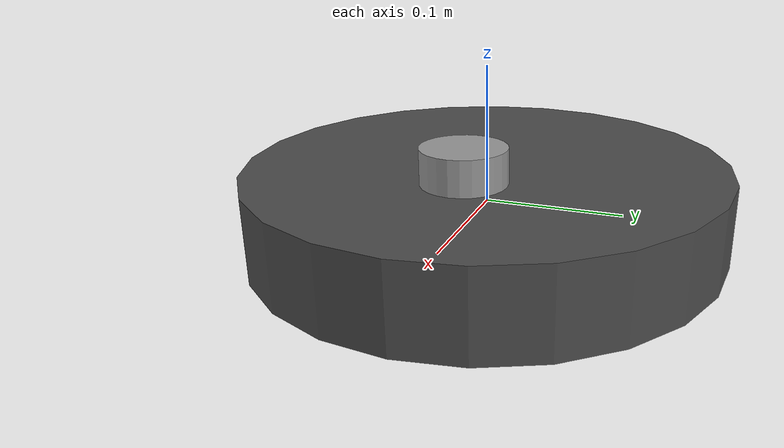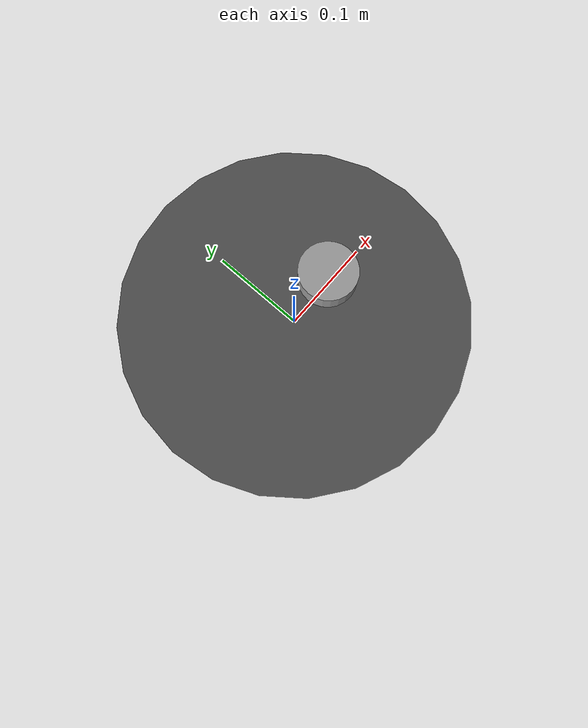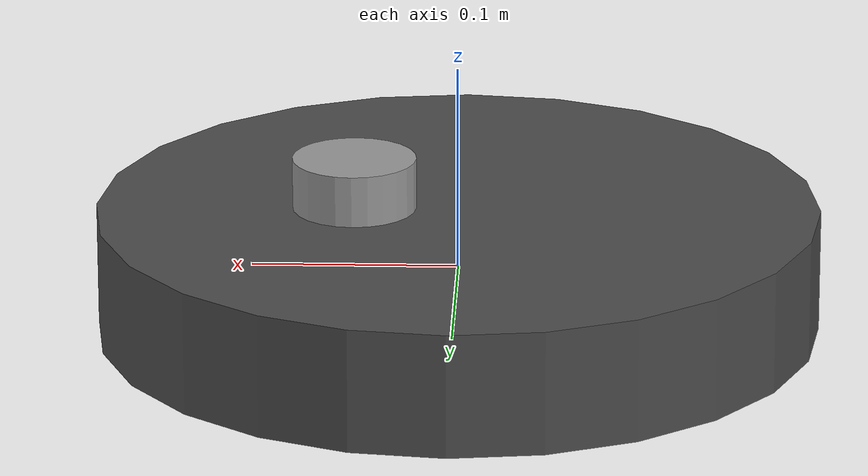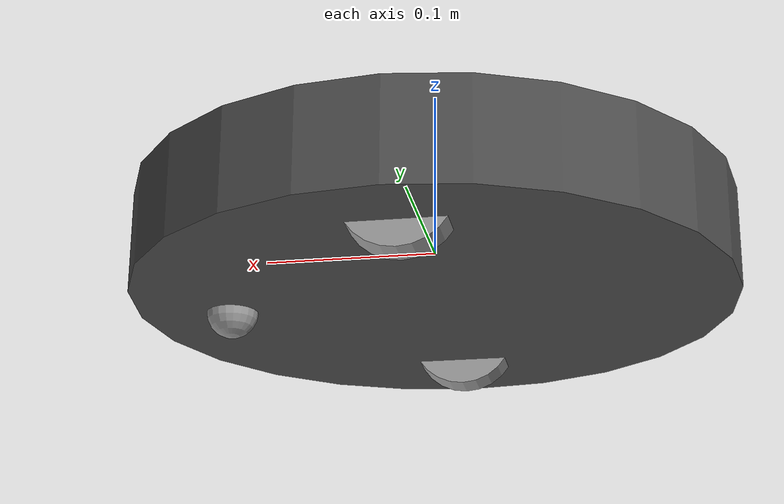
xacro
<?xml version="1.0" ?>
<robot name="zima_gazebo_robot" xmlns:xacro="http://ros.org/wiki/xacro">
  <xacro:include filename="$(find zima_gazebo)/robot/urdf/config.urdf.xacro"/>
  <xacro:include filename="$(find zima_gazebo)/robot/urdf/common_properties.urdf.xacro"/>
  <xacro:include filename="$(find zima_gazebo)/robot/urdf/zima_gazebo.urdf.xacro"/>

  <!-- zima_gazebo_robot -->
  <xacro:macro name="zima_gazebo_robot">
    <link name="base_link"/>

    <!-- chassis -->
    <link name="chassis_link">
      <visual>
        <geometry>
          <cylinder length="${chassis_height}" radius="${chassis_radius}" />
        </geometry>
        <origin xyz="0 0 0" rpy="0 0 0"/>
        <material name="dark_grey"/>
      </visual>
      <collision name="chassis_collision">
        <geometry>
          <cylinder length="${chassis_height}" radius="${chassis_radius}" />
        </geometry>
        <origin xyz="0 0 0" rpy="0 0 0"/>
      </collision>
      <inertial>
        <mass value="${chassis_mass}"/>
        <origin xyz="0 0 0"/>
        <xacro:cylinder_inertia mass="${chassis_mass}" height="${chassis_height}" radius="${chassis_radius}"/>
      </inertial>
    </link>
    <joint name="chassis_base_link_joint" type="fixed">
        <origin xyz="0 0 0" rpy="0 0 0" />
        <parent link="base_link" />
        <child link="chassis_link" />
    </joint>

    <!-- left wheel -->
    <link name="wheel_left_link">
      <visual>
        <geometry>
          <cylinder length="${wheel_width}" radius="${wheel_radius}" />
        </geometry>
        <origin xyz="0 0 0" rpy="0 0 0"/>
        <material name="light_grey"/>
      </visual>
      <collision>
        <geometry>
          <cylinder length="${wheel_width}" radius="${wheel_radius}" />
        </geometry>
        <origin xyz="0 0 0" rpy="0 0 0"/>
      </collision>
      <inertial>
        <mass value="${wheel_mass}" />
        <origin xyz="0 0 0" />
        <xacro:cylinder_inertia mass="${wheel_mass}" height="${wheel_width}" radius="${wheel_radius}"/>
      </inertial>
    </link>
    <joint name="wheel_left_joint" type="continuous">
      <parent link="chassis_link"/>
      <child link="wheel_left_link"/>
      <origin xyz="0.00 ${chassis_track_length/2} ${-(chassis_button_distance_to_ground+chassis_height/2)+wheel_radius}" rpy="${wheel_roll} ${wheel_pitch} ${wheel_yaw}"/>
      <axis xyz="0 0 1"/>
    </joint>

    <!-- right wheel -->
    <link name="wheel_right_link">
      <visual>
        <geometry>
          <cylinder length="${wheel_width}" radius="${wheel_radius}" />
        </geometry>
        <origin xyz="0 0 0" rpy="0 0 0"/>
        <material name="light_grey"/>
      </visual>
      <collision>
        <geometry>
          <cylinder length="${wheel_width}" radius="${wheel_radius}" />
        </geometry>
        <origin xyz="0 0 0" rpy="0 0 0"/>
      </collision>
      <inertial>
        <mass value="${wheel_mass}" />
        <origin xyz="0 0 0" />
        <xacro:cylinder_inertia mass="${wheel_mass}" height="${wheel_width}" radius="${wheel_radius}"/>
      </inertial>
    </link>
    <joint name="wheel_right_joint" type="continuous">
      <parent link="chassis_link"/>
      <child link="wheel_right_link"/>
      <origin xyz="0.00 ${-chassis_track_length/2} ${-(chassis_button_distance_to_ground+chassis_height/2)+wheel_radius}" rpy="${wheel_roll} ${wheel_pitch} ${wheel_yaw}"/>
      <axis xyz="0 0 1"/>
    </joint>

    <!-- caster front wheel -->
    <link name="caster_front_link">
      <visual>
        <geometry>
          <sphere radius="${caster_radius}"/>
        </geometry>
        <origin xyz="0 0 0" rpy="0 0 0"/>
        <material name="light_grey"/>
      </visual>
      <collision>
        <geometry>
          <sphere radius="${caster_radius}"/>
        </geometry>
        <origin xyz="0 0 0" rpy="0 0 0"/>
      </collision>
      <inertial>
        <mass value="${caster_mass}" />
        <origin xyz="0 0 0" />
        <inertia ixx="${2*caster_mass*caster_radius*caster_radius/5}"
                 ixy="0.0"
                 ixz="0.0"
                 iyy="${2*caster_mass*caster_radius*caster_radius/5}"
                 iyz="0.0"
                 izz="${2*caster_mass*caster_radius*caster_radius/5}" />
      </inertial>
    </link>
    <joint name="caster_front_joint" type="fixed">
      <parent link="chassis_link"/>
      <child link="caster_front_link"/>
      <origin xyz="${caster_x} 0 ${-chassis_height/2}" rpy="0 0 0"/>
    </joint>

    <!-- caster back wheel -->
    <link name="caster_back_link">
      <collision>
        <geometry>
          <sphere radius="${caster_radius}"/>
        </geometry>
        <origin xyz="0 0 0" rpy="0 0 0"/>
      </collision>
      <inertial>
        <mass value="${caster_mass}" />
        <origin xyz="0 0 0" />
        <inertia ixx="${2*caster_mass*caster_radius*caster_radius/5}"
                 ixy="0.0"
                 ixz="0.0"
                 iyy="${2*caster_mass*caster_radius*caster_radius/5}"
                 iyz="0.0"
                 izz="${2*caster_mass*caster_radius*caster_radius/5}" />
      </inertial>
    </link>
    <joint name="caster_back_joint" type="fixed">
      <parent link="chassis_link"/>
      <child link="caster_back_link"/>
      <origin xyz="${-caster_x} 0 ${-chassis_height/2}" rpy="0 0 0"/>
    </joint>

    <!-- lidar -->
    <link name="lidar_link">
      <visual>
        <geometry>
          <cylinder length="${lidar_height}" radius="${lidar_radius}" />
        </geometry>
        <origin xyz="0 0 0" rpy="0 0 0"/>
        <material name="light_grey"/>
      </visual>
      <collision>
        <geometry>
          <cylinder length="${lidar_height}" radius="${lidar_radius}" />
        </geometry>
        <origin xyz="0 0 0" rpy="0 0 0"/>
      </collision>
      <inertial>
        <mass value="${lidar_mass}" />
        <origin xyz="0 0 0" />
        <xacro:cylinder_inertia mass="${lidar_mass}" height="${lidar_height}" radius="${lidar_radius}"/>
      </inertial>
    </link>
    <joint name="lidar_joint" type="fixed">
      <origin xyz="${lidar_x} ${lidar_y} ${lidar_z}" rpy="0 0 ${lidar_yaw}" />
      <parent link="chassis_link"/>
      <child link="lidar_link" />
    </joint>

    <!-- left wall sensor -->
    <link name="left_wall_sensor_link"/>
    <joint name="left_wall_sensor_joint" type="fixed">
      <origin xyz="${left_wall_sensor_x} ${left_wall_sensor_y} ${left_wall_sensor_z}" rpy="0 0 ${left_wall_sensor_yaw}" />
      <parent link="chassis_link"/>
      <child link="left_wall_sensor_link" />
    </joint>

    <!-- right wall sensor -->
    <link name="right_wall_sensor_link"/>
    <joint name="right_wall_sensor_joint" type="fixed">
      <origin xyz="${right_wall_sensor_x} ${right_wall_sensor_y} ${right_wall_sensor_z}" rpy="0 0 ${right_wall_sensor_yaw}" />
      <parent link="chassis_link"/>
      <child link="right_wall_sensor_link" />
    </joint>

    <!-- left cliff sensor -->
    <link name="left_cliff_sensor_link"/>
    <joint name="left_cliff_sensor_joint" type="fixed">
      <origin xyz="${left_cliff_sensor_x} ${left_cliff_sensor_y} ${left_cliff_sensor_z}" rpy="0 ${left_cliff_sensor_pitch} 0" />
      <parent link="chassis_link"/>
      <child link="left_cliff_sensor_link" />
    </joint>

    <!-- left front cliff sensor -->
    <link name="left_front_cliff_sensor_link"/>
    <joint name="left_front_cliff_sensor_joint" type="fixed">
      <origin xyz="${left_front_cliff_sensor_x} ${left_front_cliff_sensor_y} ${left_front_cliff_sensor_z}" rpy="0 ${left_front_cliff_sensor_pitch} 0" />
      <parent link="chassis_link"/>
      <child link="left_front_cliff_sensor_link" />
    </joint>

    <!-- right front cliff sensor -->
    <link name="right_front_cliff_sensor_link"/>
    <joint name="right_front_cliff_sensor_joint" type="fixed">
      <origin xyz="${right_front_cliff_sensor_x} ${right_front_cliff_sensor_y} ${right_front_cliff_sensor_z}" rpy="0 ${right_front_cliff_sensor_pitch} 0" />
      <parent link="chassis_link"/>
      <child link="right_front_cliff_sensor_link" />
    </joint>

    <!-- right cliff sensor -->
    <link name="right_cliff_sensor_link"/>
    <joint name="right_cliff_sensor_joint" type="fixed">
      <origin xyz="${right_cliff_sensor_x} ${right_cliff_sensor_y} ${right_cliff_sensor_z}" rpy="0 ${right_cliff_sensor_pitch} 0" />
      <parent link="chassis_link"/>
      <child link="right_cliff_sensor_link" />
    </joint>

    <xacro:zima_gazebo_robot_sim/>
    <xacro:zima_ros_robot_controller/>

  </xacro:macro>

  <xacro:zima_gazebo_robot/>

</robot>

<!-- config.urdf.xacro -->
<robot xmlns:xacro="http://ros.org/wiki/xacro">

  <xacro:property name="topic_prefix"  value="/zima_gazebo_robot"/>

  <xacro:property name="sim_time_multi"  value="1"/>

  <xacro:property name="chassis_radius"  value="0.175"/>
  <xacro:property name="chassis_height"  value="0.06"/>
  <xacro:property name="chassis_mass"  value="9"/>
  <xacro:property name="chassis_track_length"  value="0.24"/>
  <xacro:property name="chassis_button_distance_to_ground"  value="0.015"/>
  <xacro:property name="chassis_bumper_update_rate"  value="50"/>
  <xacro:property name="chassis_bumper_visualization"  value="1"/>
  <xacro:property name="chassis_bumper_topic"  value="chassis_bumper"/>
  <xacro:property name="chassis_odom_topic"  value="gazebo_ground_truth_odom"/>
  <xacro:property name="chassis_odom_rate"  value="${sim_time_multi*50}"/>

  <xacro:property name="wheel_radius"  value="0.032"/>
  <xacro:property name="wheel_width"  value="0.02"/>
  <xacro:property name="wheel_roll"  value="1.5707"/>
  <xacro:property name="wheel_pitch"  value="0.0"/>
  <xacro:property name="wheel_yaw"  value="3.1415"/>
  <xacro:property name="wheel_mass"  value="4.85"/>

  <xacro:property name="caster_radius"  value="${chassis_button_distance_to_ground}"/>
  <xacro:property name="caster_mass"  value="10"/>
  <xacro:property name="caster_x"  value="${chassis_track_length/2}"/>

  <xacro:property name="lidar_radius"  value="0.03"/>
  <xacro:property name="lidar_height"  value="0.03"/>
  <xacro:property name="lidar_mass"  value="0.135"/>
  <xacro:property name="lidar_x"  value="0.05"/>
  <xacro:property name="lidar_y"  value="0"/>
  <xacro:property name="lidar_z"  value="${chassis_height/2+0.01}"/>
  <xacro:property name="lidar_yaw"  value="0"/>
  <xacro:property name="lidar_rate"  value="${sim_time_multi*10}"/>
  <xacro:property name="lidar_visualization"  value="0"/>
  <xacro:property name="lidar_samples"  value="4000"/>
  <xacro:property name="lidar_horizontal_samples"  value="${lidar_samples/lidar_rate}"/>
  <xacro:property name="lidar_horizontal_resolution"  value="1"/>
  <xacro:property name="lidar_horizontal_min_radian"  value="${-M_PI}"/>
  <xacro:property name="lidar_horizontal_max_radian"  value="${M_PI}"/>
  <xacro:property name="lidar_range_min"  value="${chassis_radius-lidar_x}"/>
  <xacro:property name="lidar_range_max"  value="8"/>
  <xacro:property name="lidar_range_resolution"  value="0.01"/>
  <xacro:property name="lidar_topic"  value="lidar_scan"/>
  <xacro:property name="lidar_bumper_topic"  value="lidar_bumper"/>
  <xacro:property name="lidar_bumper_visualization"  value="0"/>
  <xacro:property name="lidar_bumper_update_rate"  value="50"/>

  <xacro:property name="left_wall_sensor_x"  value="${(chassis_radius+0.001)*0.17365}"/>
  <xacro:property name="left_wall_sensor_y"  value="${(chassis_radius+0.001)*0.98481}"/>
  <xacro:property name="left_wall_sensor_z"  value="0"/>
  <xacro:property name="left_wall_sensor_yaw"  value="1.3963"/>
  <xacro:property name="left_wall_sensor_rate"  value="${sim_time_multi*50}"/>
  <xacro:property name="left_wall_sensor_visualization"  value="0"/>
  <xacro:property name="left_wall_sensor_samples"  value="1"/>
  <xacro:property name="left_wall_sensor_horizontal_samples"  value="${left_wall_sensor_samples}"/>
  <xacro:property name="left_wall_sensor_horizontal_resolution"  value="1"/>
  <xacro:property name="left_wall_sensor_horizontal_min_radian"  value="0"/>
  <xacro:property name="left_wall_sensor_horizontal_max_radian"  value="0"/>
  <xacro:property name="left_wall_sensor_range_min"  value="0.0005"/>
  <xacro:property name="left_wall_sensor_range_max"  value="0.32"/>
  <xacro:property name="left_wall_sensor_range_resolution"  value="0.001"/>
  <xacro:property name="left_wall_sensor_topic"  value="left_wall_sensor_scan"/>

  <xacro:property name="right_wall_sensor_x"  value="${(chassis_radius+0.001)*0.17365}"/>
  <xacro:property name="right_wall_sensor_y"  value="${(chassis_radius+0.001)*-0.98481}"/>
  <xacro:property name="right_wall_sensor_z"  value="0"/>
  <xacro:property name="right_wall_sensor_yaw"  value="-1.3963"/>
  <xacro:property name="right_wall_sensor_rate"  value="${sim_time_multi*50}"/>
  <xacro:property name="right_wall_sensor_visualization"  value="0"/>
  <xacro:property name="right_wall_sensor_samples"  value="1"/>
  <xacro:property name="right_wall_sensor_horizontal_samples"  value="${left_wall_sensor_samples}"/>
  <xacro:property name="right_wall_sensor_horizontal_resolution"  value="1"/>
  <xacro:property name="right_wall_sensor_horizontal_min_radian"  value="0"/>
  <xacro:property name="right_wall_sensor_horizontal_max_radian"  value="0"/>
  <xacro:property name="right_wall_sensor_range_min"  value="0.0005"/>
  <xacro:property name="right_wall_sensor_range_max"  value="0.32"/>
  <xacro:property name="right_wall_sensor_range_resolution"  value="0.001"/>
  <xacro:property name="right_wall_sensor_topic"  value="right_wall_sensor_scan"/>

  <xacro:property name="left_cliff_sensor_x"  value="${(chassis_radius-0.01)*0.17365}"/>
  <xacro:property name="left_cliff_sensor_y"  value="${(chassis_radius-0.01)*0.98481}"/>
  <xacro:property name="left_cliff_sensor_z"  value="-${chassis_height/2}"/>
  <xacro:property name="left_cliff_sensor_pitch"  value="1.5708"/>
  <xacro:property name="left_cliff_sensor_rate"  value="${sim_time_multi*50}"/>
  <xacro:property name="left_cliff_sensor_visualization"  value="1"/>
  <xacro:property name="left_cliff_sensor_samples"  value="1"/>
  <xacro:property name="left_cliff_sensor_horizontal_samples"  value="${left_cliff_sensor_samples}"/>
  <xacro:property name="left_cliff_sensor_horizontal_resolution"  value="1"/>
  <xacro:property name="left_cliff_sensor_horizontal_min_radian"  value="0"/>
  <xacro:property name="left_cliff_sensor_horizontal_max_radian"  value="0"/>
  <xacro:property name="left_cliff_sensor_range_min"  value="0.0005"/>
  <xacro:property name="left_cliff_sensor_range_max"  value="0.1"/>
  <xacro:property name="left_cliff_sensor_range_resolution"  value="0.001"/>
  <xacro:property name="left_cliff_sensor_topic"  value="left_cliff_sensor_scan"/>

  <xacro:property name="left_front_cliff_sensor_x"  value="${(chassis_radius-0.01)*0.96593}"/>
  <xacro:property name="left_front_cliff_sensor_y"  value="${(chassis_radius-0.01)*0.25882}"/>
  <xacro:property name="left_front_cliff_sensor_z"  value="-${chassis_height/2}"/>
  <xacro:property name="left_front_cliff_sensor_pitch"  value="1.5708"/>
  <xacro:property name="left_front_cliff_sensor_rate"  value="${sim_time_multi*50}"/>
  <xacro:property name="left_front_cliff_sensor_visualization"  value="1"/>
  <xacro:property name="left_front_cliff_sensor_samples"  value="1"/>
  <xacro:property name="left_front_cliff_sensor_horizontal_samples"  value="${left_front_cliff_sensor_samples}"/>
  <xacro:property name="left_front_cliff_sensor_horizontal_resolution"  value="1"/>
  <xacro:property name="left_front_cliff_sensor_horizontal_min_radian"  value="0"/>
  <xacro:property name="left_front_cliff_sensor_horizontal_max_radian"  value="0"/>
  <xacro:property name="left_front_cliff_sensor_range_min"  value="0.0005"/>
  <xacro:property name="left_front_cliff_sensor_range_max"  value="0.1"/>
  <xacro:property name="left_front_cliff_sensor_range_resolution"  value="0.001"/>
  <xacro:property name="left_front_cliff_sensor_topic"  value="left_front_cliff_sensor_scan"/>

  <xacro:property name="right_front_cliff_sensor_x"  value="${(chassis_radius-0.01)*0.96593}"/>
  <xacro:property name="right_front_cliff_sensor_y"  value="${(chassis_radius-0.01)*-0.25882}"/>
  <xacro:property name="right_front_cliff_sensor_z"  value="-${chassis_height/2}"/>
  <xacro:property name="right_front_cliff_sensor_pitch"  value="1.5708"/>
  <xacro:property name="right_front_cliff_sensor_rate"  value="${sim_time_multi*50}"/>
  <xacro:property name="right_front_cliff_sensor_visualization"  value="1"/>
  <xacro:property name="right_front_cliff_sensor_samples"  value="1"/>
  <xacro:property name="right_front_cliff_sensor_horizontal_samples"  value="${right_front_cliff_sensor_samples}"/>
  <xacro:property name="right_front_cliff_sensor_horizontal_resolution"  value="1"/>
  <xacro:property name="right_front_cliff_sensor_horizontal_min_radian"  value="0"/>
  <xacro:property name="right_front_cliff_sensor_horizontal_max_radian"  value="0"/>
  <xacro:property name="right_front_cliff_sensor_range_min"  value="0.0005"/>
  <xacro:property name="right_front_cliff_sensor_range_max"  value="0.1"/>
  <xacro:property name="right_front_cliff_sensor_range_resolution"  value="0.001"/>
  <xacro:property name="right_front_cliff_sensor_topic"  value="right_front_cliff_sensor_scan"/>

  <xacro:property name="right_cliff_sensor_x"  value="${(chassis_radius-0.01)*0.17365}"/>
  <xacro:property name="right_cliff_sensor_y"  value="${(chassis_radius-0.01)*-0.98481}"/>
  <xacro:property name="right_cliff_sensor_z"  value="-${chassis_height/2}"/>
  <xacro:property name="right_cliff_sensor_pitch"  value="1.5708"/>
  <xacro:property name="right_cliff_sensor_rate"  value="${sim_time_multi*50}"/>
  <xacro:property name="right_cliff_sensor_visualization"  value="1"/>
  <xacro:property name="right_cliff_sensor_samples"  value="1"/>
  <xacro:property name="right_cliff_sensor_horizontal_samples"  value="${right_cliff_sensor_samples}"/>
  <xacro:property name="right_cliff_sensor_horizontal_resolution"  value="1"/>
  <xacro:property name="right_cliff_sensor_horizontal_min_radian"  value="0"/>
  <xacro:property name="right_cliff_sensor_horizontal_max_radian"  value="0"/>
  <xacro:property name="right_cliff_sensor_range_min"  value="0.0005"/>
  <xacro:property name="right_cliff_sensor_range_max"  value="0.1"/>
  <xacro:property name="right_cliff_sensor_range_resolution"  value="0.001"/>
  <xacro:property name="right_cliff_sensor_topic"  value="right_cliff_sensor_scan"/>

</robot>

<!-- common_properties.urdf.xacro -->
<robot name="xacro_properties" xmlns:xacro="http://ros.org/wiki/xacro">
  <xacro:property name="M_PI" value="3.1415926535897931" />
  <material name="dark_grey">
    <color rgba="0.3 0.3 0.3 1"/>
  </material>
  <material name="light_grey">
    <color rgba="0.6 0.6 0.6 1"/>
  </material>

  <xacro:macro name="cylinder_inertia" params="mass radius height">
    <inertia ixx="${(3*radius*radius + height*height)*mass/12}"
             ixy="0.0"
             ixz="0.0"
             iyy="${(3*radius*radius + height*height)*mass/12}"
             iyz="0.0"
             izz="${radius*radius*mass/2}" />
  </xacro:macro>

  <xacro:macro name="sphere_inertia" params="mass radius">
    <inertia ixx="${2*mass*radius*radius/5}"
             ixy="0.0"
             ixz="0.0"
             iyy="${2*mass*radius*radius/5}"
             iyz="0.0"
             izz="${2*mass*radius*radius/5}" />
  </xacro:macro>

</robot>
